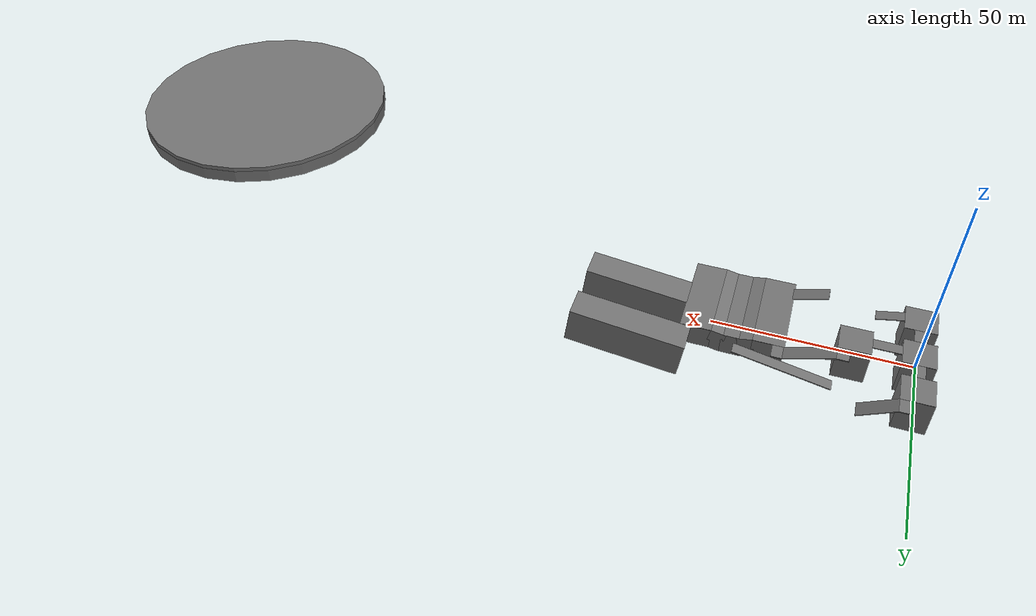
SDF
<sdf version="1.10">
 <world name="waterworld">
  <physics name="ode_cpu" type="ode">
   <max_step_size>0.002</max_step_size>
   <real_time_update_rate>500</real_time_update_rate>
   <real_time_factor>1.0</real_time_factor>
   <ode>
    <solver><type>quick</type><iters>50</iters><sor>1.3</sor></solver>
    <constraints><cfm>0.0</cfm><erp>0.2</erp></constraints>
   </ode>
  </physics>
  <plugin name="gz::sim::systems::Physics" filename="gz-sim-physics-system"/>
  <plugin name="gz::sim::systems::UserCommands" filename="gz-sim-user-commands-system"/>
  <plugin name="gz::sim::systems::SceneBroadcaster" filename="gz-sim-scene-broadcaster-system"/>
  <plugin name="gz::sim::systems::Contact" filename="gz-sim-contact-system"/>
  <gravity>0 0 -9.81</gravity>
  <magnetic_field>5.5644999999999998e-06 2.2875799999999999e-05 -4.2388400000000002e-05</magnetic_field>
  <atmosphere type="adiabatic"/>
  <scene><ambient>0.5 0.5 0.5 1</ambient><background>0.7 0.7 0.75 1</background><shadows>false</shadows></scene>
  <model name="central_tower">
   <static>true</static>
   <link name="link">
    <collision name="col"><geometry><box><size>8 8 10</size></box></geometry></collision>
    <visual name="vis">
     <geometry><box><size>8 8 10</size></box></geometry>
     <material>
      <ambient>0.35 0.35 0.35 1</ambient>
      <diffuse>0.45 0.45 0.45 1</diffuse>
      <pbr>
       <metal>
        <albedo_map>model://textures/stone_textures/stone_wall_seamless_1.jpg</albedo_map>
        <roughness>0.9</roughness>
        <metalness>0.0</metalness>
       </metal>
      </pbr>
     </material>
    </visual>
   </link>
  </model>
  <model name="central_arena_floor_model">
   <static>true</static>
   <pose>0 0 5 0 0 0</pose>
   <link name="central_arena_floor_link">
    <collision name="col">
     <geometry><box><size>8 8 0.1</size></box></geometry>
     <surface>
      <friction><ode><mu>0.9</mu><mu2>0.9</mu2><fdir1>1 0 0</fdir1></ode></friction>
      <bounce><restitution_coefficient>0.03</restitution_coefficient><threshold>1e3</threshold></bounce>
      <contact><ode><kp>1e6</kp><kd>1e3</kd><max_vel>1.0</max_vel><min_depth>0.001</min_depth></ode></contact>
     </surface>
    </collision>
    <visual name="vis">
     <geometry><box><size>8 8 0.1</size></box></geometry>
     <material>
      <ambient>0.35 0.35 0.35 1</ambient>
      <diffuse>0.45 0.45 0.45 1</diffuse>
      <pbr>
       <metal>
        <albedo_map>model://textures/grass_textures/green_grass_seamless.jpg</albedo_map>
        <roughness>0.9</roughness>
        <metalness>0.0</metalness>
       </metal>
      </pbr>
     </material>
    </visual>
   </link>
  </model>
  <model name="west_tower">
   <static>true</static>
   <link name="link">
    <pose>0 12 0 0 0 0</pose>
    <collision name="col"><geometry><box><size>8 8 10</size></box></geometry></collision>
    <visual name="vis">
     <geometry><box><size>8 8 10</size></box></geometry>
     <material>
      <ambient>0.35 0.35 0.35 1</ambient>
      <diffuse>0.45 0.45 0.45 1</diffuse>
      <pbr>
       <metal>
        <albedo_map>model://textures/stone_textures/stone_wall_seamless_1.jpg</albedo_map>
        <roughness>0.9</roughness>
        <metalness>0.0</metalness>
       </metal>
      </pbr>
     </material>
    </visual>
   </link>
  </model>
  <model name="west_arena_floor_model">
   <static>true</static>
   <pose>0 12 5 0 0 0</pose>
   <link name="west_arena_floor_link">
    <collision name="col">
     <geometry><box><size>8 8 0.1</size></box></geometry>
     <surface>
      <friction><ode><mu>0.9</mu><mu2>0.9</mu2><fdir1>1 0 0</fdir1></ode></friction>
      <bounce><restitution_coefficient>0.03</restitution_coefficient><threshold>1e3</threshold></bounce>
      <contact><ode><kp>1e6</kp><kd>1e3</kd><max_vel>1.0</max_vel><min_depth>0.001</min_depth></ode></contact>
     </surface>
    </collision>
    <visual name="vis">
     <geometry><box><size>8 8 0.1</size></box></geometry>
     <material>
      <ambient>0.35 0.35 0.35 1</ambient>
      <diffuse>0.45 0.45 0.45 1</diffuse>
      <pbr>
       <metal>
        <albedo_map>model://textures/grass_textures/green_grass_seamless.jpg</albedo_map>
        <roughness>0.9</roughness>
        <metalness>0.0</metalness>
       </metal>
      </pbr>
     </material>
    </visual>
   </link>
  </model>
  <model name="east_tower">
   <static>true</static>
   <link name="link">
    <pose>0 -12 0 0 0 0</pose>
    <collision name="col"><geometry><box><size>8 8 10</size></box></geometry></collision>
    <visual name="vis">
     <geometry><box><size>8 8 10</size></box></geometry>
     <material>
      <ambient>0.35 0.35 0.35 1</ambient>
      <diffuse>0.45 0.45 0.45 1</diffuse>
      <pbr>
       <metal>
        <albedo_map>model://textures/stone_textures/stone_wall_seamless_1.jpg</albedo_map>
        <roughness>0.9</roughness>
        <metalness>0.0</metalness>
       </metal>
      </pbr>
     </material>
    </visual>
   </link>
  </model>
  <model name="east_arena_floor_model">
   <static>true</static>
   <pose>0 -12 5 0 0 0</pose>
   <link name="east_arena_floor_link">
    <collision name="col">
     <geometry><box><size>8 8 0.1</size></box></geometry>
     <surface>
      <friction><ode><mu>0.9</mu><mu2>0.9</mu2><fdir1>1 0 0</fdir1></ode></friction>
      <bounce><restitution_coefficient>0.03</restitution_coefficient><threshold>1e3</threshold></bounce>
      <contact><ode><kp>1e6</kp><kd>1e3</kd><max_vel>1.0</max_vel><min_depth>0.001</min_depth></ode></contact>
     </surface>
    </collision>
    <visual name="vis">
     <geometry><box><size>8 8 0.1</size></box></geometry>
     <material>
      <ambient>0.35 0.35 0.35 1</ambient>
      <diffuse>0.45 0.45 0.45 1</diffuse>
      <pbr>
       <metal>
        <albedo_map>model://textures/grass_textures/green_grass_seamless.jpg</albedo_map>
        <roughness>0.9</roughness>
        <metalness>0.0</metalness>
       </metal>
      </pbr>
     </material>
    </visual>
   </link>
  </model>
  <model name="north_tower">
   <static>true</static>
   <link name="link">
    <pose>15 0 0 0 0 0</pose>
    <collision name="col"><geometry><box><size>8 8 10</size></box></geometry></collision>
    <visual name="vis">
     <geometry><box><size>8 8 10</size></box></geometry>
     <material>
      <ambient>0.35 0.35 0.35 1</ambient>
      <diffuse>0.45 0.45 0.45 1</diffuse>
      <pbr>
       <metal>
        <albedo_map>model://textures/stone_textures/stone_wall_seamless_1.jpg</albedo_map>
        <roughness>0.9</roughness>
        <metalness>0.0</metalness>
       </metal>
      </pbr>
     </material>
    </visual>
   </link>
  </model>
  <model name="north_arena_floor_model">
   <static>true</static>
   <pose>15 0 5 0 0 0</pose>
   <link name="north_arena_floor_link">
    <collision name="col">
     <geometry><box><size>8 8 0.1</size></box></geometry>
     <surface>
      <friction><ode><mu>0.9</mu><mu2>0.9</mu2><fdir1>1 0 0</fdir1></ode></friction>
      <bounce><restitution_coefficient>0.03</restitution_coefficient><threshold>1e3</threshold></bounce>
      <contact><ode><kp>1e6</kp><kd>1e3</kd><max_vel>1.0</max_vel><min_depth>0.001</min_depth></ode></contact>
     </surface>
    </collision>
    <visual name="vis">
     <geometry><box><size>8 8 0.1</size></box></geometry>
     <material>
      <ambient>0.35 0.35 0.35 1</ambient>
      <diffuse>0.45 0.45 0.45 1</diffuse>
      <pbr>
       <metal>
        <albedo_map>model://textures/grass_textures/green_grass_seamless.jpg</albedo_map>
        <roughness>0.9</roughness>
        <metalness>0.0</metalness>
       </metal>
      </pbr>
     </material>
    </visual>
   </link>
  </model>
  <model name="tidal_island_segment_1">
   <static>true</static>
   <link name="link">
    <pose>35 -8 -2.2 0 0 0</pose>
    <collision name="col"><geometry><box><size>8 24 6</size></box></geometry></collision>
    <visual name="vis">
     <geometry><box><size>8 24 6</size></box></geometry>
     <material>
      <ambient>0.35 0.35 0.35 1</ambient>
      <diffuse>0.45 0.45 0.45 1</diffuse>
      <pbr>
       <metal>
        <albedo_map>model://textures/stone_textures/stone_wall_seamless_1.jpg</albedo_map>
        <roughness>0.9</roughness>
        <metalness>0.0</metalness>
       </metal>
      </pbr>
     </material>
    </visual>
   </link>
  </model>
  <model name="tidal_island_segment_1_floor_model">
   <static>true</static>
   <pose>35 -8 0.8 0 0 0</pose>
   <link name="north_arena_floor_link">
    <collision name="col">
     <geometry><box><size>8 24 0.1</size></box></geometry>
     <surface>
      <friction><ode><mu>0.9</mu><mu2>0.9</mu2><fdir1>1 0 0</fdir1></ode></friction>
      <bounce><restitution_coefficient>0.03</restitution_coefficient><threshold>1e3</threshold></bounce>
      <contact><ode><kp>1e6</kp><kd>1e3</kd><max_vel>1.0</max_vel><min_depth>0.001</min_depth></ode></contact>
     </surface>
    </collision>
    <visual name="vis">
     <geometry><box><size>8 24 0.1</size></box></geometry>
     <material>
      <ambient>0.35 0.35 0.35 1</ambient>
      <diffuse>0.45 0.45 0.45 1</diffuse>
      <pbr>
       <metal>
        <albedo_map>model://textures/grass_textures/green_grass_seamless.jpg</albedo_map>
        <roughness>0.9</roughness>
        <metalness>0.0</metalness>
       </metal>
      </pbr>
     </material>
    </visual>
   </link>
  </model>
  <model name="tidal_island_segment_2">
   <static>true</static>
   <link name="link">
    <pose>40.3641 -8 -2.4876 0 0.2 0</pose>
    <collision name="col"><geometry><box><size>4 24 6</size></box></geometry></collision>
    <visual name="vis">
     <geometry><box><size>4 24 6</size></box></geometry>
     <material>
      <ambient>0.35 0.35 0.35 1</ambient>
      <diffuse>0.45 0.45 0.45 1</diffuse>
      <pbr>
       <metal>
        <albedo_map>model://textures/stone_textures/stone_wall_seamless_1.jpg</albedo_map>
        <roughness>0.9</roughness>
        <metalness>0.0</metalness>
       </metal>
      </pbr>
     </material>
    </visual>
   </link>
  </model>
  <model name="tidal_island_segment_3">
   <static>true</static>
   <link name="link">
    <pose>44.2 -8 -2.8 0 0 0</pose>
    <collision name="col"><geometry><box><size>5 24 6</size></box></geometry></collision>
    <visual name="vis">
     <geometry><box><size>5 24 6</size></box></geometry>
     <material>
      <ambient>0.35 0.35 0.35 1</ambient>
      <diffuse>0.45 0.45 0.45 1</diffuse>
      <pbr>
       <metal>
        <albedo_map>model://textures/stone_textures/stone_wall_seamless_1.jpg</albedo_map>
        <roughness>0.9</roughness>
        <metalness>0.0</metalness>
       </metal>
      </pbr>
     </material>
    </visual>
   </link>
  </model>
  <model name="tidal_island_segment_4">
   <static>true</static>
   <link name="link">
    <pose>48 -8 -2.4876 0 -0.2 0</pose>
    <collision name="col"><geometry><box><size>4 24 6</size></box></geometry></collision>
    <visual name="vis">
     <geometry><box><size>4 24 6</size></box></geometry>
     <material>
      <ambient>0.35 0.35 0.35 1</ambient>
      <diffuse>0.45 0.45 0.45 1</diffuse>
      <pbr>
       <metal>
        <albedo_map>model://textures/stone_textures/stone_wall_seamless_1.jpg</albedo_map>
        <roughness>0.9</roughness>
        <metalness>0.0</metalness>
       </metal>
      </pbr>
     </material>
    </visual>
   </link>
  </model>
  <model name="tidal_island_segment_5">
   <static>true</static>
   <link name="link">
    <pose>53.3641 -8 -2.2 0 0 0</pose>
    <collision name="col"><geometry><box><size>8 24 6</size></box></geometry></collision>
    <visual name="vis">
     <geometry><box><size>8 24 6</size></box></geometry>
     <material>
      <ambient>0.35 0.35 0.35 1</ambient>
      <diffuse>0.45 0.45 0.45 1</diffuse>
      <pbr>
       <metal>
        <albedo_map>model://textures/stone_textures/stone_wall_seamless_1.jpg</albedo_map>
        <roughness>0.9</roughness>
        <metalness>0.0</metalness>
       </metal>
      </pbr>
     </material>
    </visual>
   </link>
  </model>
  <model name="tidal_island_segment_5_floor_model">
   <static>true</static>
   <pose>53.3641 -8 0.7999 0 0 0</pose>
   <link name="north_arena_floor_link">
    <collision name="col">
     <geometry><box><size>8 24 0.1</size></box></geometry>
     <surface>
      <friction><ode><mu>0.9</mu><mu2>0.9</mu2><fdir1>1 0 0</fdir1></ode></friction>
      <bounce><restitution_coefficient>0.03</restitution_coefficient><threshold>1e3</threshold></bounce>
      <contact><ode><kp>1e6</kp><kd>1e3</kd><max_vel>1.0</max_vel><min_depth>0.001</min_depth></ode></contact>
     </surface>
    </collision>
    <visual name="vis">
     <geometry><box><size>8 24 0.1</size></box></geometry>
     <material>
      <ambient>0.35 0.35 0.35 1</ambient>
      <diffuse>0.45 0.45 0.45 1</diffuse>
      <pbr>
       <metal>
        <albedo_map>model://textures/grass_textures/green_grass_seamless.jpg</albedo_map>
        <roughness>0.9</roughness>
        <metalness>0.0</metalness>
       </metal>
      </pbr>
     </material>
    </visual>
   </link>
  </model>
  <model name="sky_oasis">
   <static>true</static>
   <link name="link">
    <pose>170 0 40 0 0 0</pose>
    <collision name="col">
     <geometry><cylinder><radius>30</radius><length>3</length></cylinder></geometry>
    </collision>
    <visual name="vis">
     <geometry><cylinder><radius>30</radius><length>3</length></cylinder></geometry>
     <material>
      <ambient>0.35 0.35 0.35 1</ambient>
      <diffuse>0.45 0.45 0.45 1</diffuse>
      <pbr>
       <metal>
        <albedo_map>model://textures/soil_textures/soil_seamless_1.jpg</albedo_map>
        <roughness>0.9</roughness>
        <metalness>0.0</metalness>
       </metal>
      </pbr>
     </material>
    </visual>
   </link>
  </model>
  <model name="sky_oasis_floor_model">
   <static>true</static>
   <pose>170 0 42 0 0 0</pose>
   <link name="central_arena_floor_link">
    <collision name="col">
     <geometry><cylinder><radius>30</radius><length>1</length></cylinder></geometry>
     <surface>
      <friction><ode><mu>0.9</mu><mu2>0.9</mu2><fdir1>1 0 0</fdir1></ode></friction>
      <bounce><restitution_coefficient>0.03</restitution_coefficient><threshold>1e3</threshold></bounce>
      <contact><ode><kp>1e6</kp><kd>1e3</kd><max_vel>1.0</max_vel><min_depth>0.001</min_depth></ode></contact>
     </surface>
    </collision>
    <visual name="vis">
     <geometry><cylinder><radius>30</radius><length>1</length></cylinder></geometry>
     <material>
      <ambient>0.35 0.35 0.35 1</ambient>
      <diffuse>0.45 0.45 0.45 1</diffuse>
      <pbr>
       <metal>
        <albedo_map>model://textures/grass_textures/green_grass_seamless.jpg</albedo_map>
        <roughness>0.9</roughness>
        <metalness>0.0</metalness>
       </metal>
      </pbr>
     </material>
    </visual>
   </link>
  </model>
  <model name="north_bridge">
   <static>true</static>
   <link name="link">
    <pose>7.5 0 4.925 0 0 0</pose>
    <collision name="col"><geometry><box><size>7 3 0.25</size></box></geometry></collision>
    <visual name="vis">
     <geometry><box><size>7 3 0.25</size></box></geometry>
     <material>
      <ambient>0.35 0.35 0.35 1</ambient>
      <diffuse>0.45 0.45 0.45 1</diffuse>
      <pbr>
       <metal>
        <albedo_map>model://textures/wood_textures/wood_texture_seamless_long.jpg</albedo_map>
        <roughness>0.9</roughness>
        <metalness>0.0</metalness>
       </metal>
      </pbr>
     </material>
    </visual>
   </link>
  </model>
  <model name="east_bridge">
   <static>true</static>
   <link name="link">
    <pose>0 -6 4.925 0 0 0</pose>
    <collision name="col"><geometry><box><size>3 4 0.25</size></box></geometry></collision>
    <visual name="vis">
     <geometry><box><size>3 4 0.25</size></box></geometry>
     <material>
      <ambient>0.35 0.35 0.35 1</ambient>
      <diffuse>0.45 0.45 0.45 1</diffuse>
      <pbr>
       <metal>
        <albedo_map>model://textures/wood_textures/wood_texture_seamless_1.jpg</albedo_map>
        <roughness>0.9</roughness>
        <metalness>0.0</metalness>
       </metal>
      </pbr>
     </material>
    </visual>
   </link>
  </model>
  <model name="west_bridge">
   <static>true</static>
   <link name="link">
    <pose>0 6 4.925 0 0 0</pose>
    <collision name="col"><geometry><box><size>3 4 0.25</size></box></geometry></collision>
    <visual name="vis">
     <geometry><box><size>3 4 0.25</size></box></geometry>
     <material>
      <ambient>0.35 0.35 0.35 1</ambient>
      <diffuse>0.45 0.45 0.45 1</diffuse>
      <pbr>
       <metal>
        <albedo_map>model://textures/wood_textures/wood_texture_seamless_1.jpg</albedo_map>
        <roughness>0.9</roughness>
        <metalness>0.0</metalness>
       </metal>
      </pbr>
     </material>
    </visual>
   </link>
  </model>
  <model name="east_north_bridge">
   <static>true</static>
   <link name="link">
    <pose>7.39 -12 4.165 0 0.22 0</pose>
    <collision name="col"><geometry><box><size>7 3 0.25</size></box></geometry></collision>
    <visual name="vis">
     <geometry><box><size>7 3 0.25</size></box></geometry>
     <material>
      <ambient>0.35 0.35 0.35 1</ambient>
      <diffuse>0.45 0.45 0.45 1</diffuse>
      <pbr>
       <metal>
        <albedo_map>model://textures/wood_textures/wood_texture_seamless_long.jpg</albedo_map>
        <roughness>0.9</roughness>
        <metalness>0.0</metalness>
       </metal>
      </pbr>
     </material>
    </visual>
   </link>
  </model>
  <model name="west_north_bridge_platform">
   <static>true</static>
   <link name="link">
    <pose>2.5 18 4.925 0 0 0</pose>
    <collision name="col"><geometry><box><size>3 4 0.25</size></box></geometry></collision>
    <visual name="vis">
     <geometry><box><size>3 4 0.25</size></box></geometry>
     <material>
      <ambient>0.35 0.35 0.35 1</ambient>
      <diffuse>0.45 0.45 0.45 1</diffuse>
      <pbr>
       <metal>
        <albedo_map>model://textures/wood_textures/wood_texture_seamless_1.jpg</albedo_map>
        <roughness>0.9</roughness>
        <metalness>0.0</metalness>
       </metal>
      </pbr>
     </material>
    </visual>
   </link>
  </model>
  <model name="west_north_bridge">
   <static>true</static>
   <link name="link">
    <pose>8.328 18 2.543 0 0.5 0</pose>
    <collision name="col"><geometry><box><size>10 4 0.25</size></box></geometry></collision>
    <visual name="vis">
     <geometry><box><size>10 4 0.25</size></box></geometry>
     <material>
      <ambient>0.35 0.35 0.35 1</ambient>
      <diffuse>0.45 0.45 0.45 1</diffuse>
      <pbr>
       <metal>
        <albedo_map>model://textures/wood_textures/wood_texture_seamless_longer.jpg</albedo_map>
        <roughness>0.9</roughness>
        <metalness>0.0</metalness>
       </metal>
      </pbr>
     </material>
    </visual>
   </link>
  </model>
  <model name="west_north_north_bridge">
   <static>true</static>
   <link name="link">
    <pose>31 12.2 2.5 0 -0.2 0</pose>
    <collision name="col"><geometry><box><size>25 3 0.25</size></box></geometry></collision>
    <visual name="vis">
     <geometry><box><size>25 3 0.25</size></box></geometry>
     <material>
      <ambient>0.35 0.35 0.35 1</ambient>
      <diffuse>0.45 0.45 0.45 1</diffuse>
      <pbr>
       <metal>
        <albedo_map>model://textures/wood_textures/wood_texture_seamless_1x10.jpg</albedo_map>
        <roughness>0.9</roughness>
        <metalness>0.0</metalness>
       </metal>
      </pbr>
     </material>
    </visual>
   </link>
  </model>
  <model name="north_north_bridge_platform_1">
   <static>true</static>
   <link name="link">
    <pose>17.5 6 4.925 0 0 0</pose>
    <collision name="col"><geometry><box><size>3 4 0.25</size></box></geometry></collision>
    <visual name="vis">
     <geometry><box><size>3 4 0.25</size></box></geometry>
     <material>
      <ambient>0.35 0.35 0.35 1</ambient>
      <diffuse>0.45 0.45 0.45 1</diffuse>
      <pbr>
       <metal>
        <albedo_map>model://textures/wood_textures/wood_texture_seamless_longer.jpg</albedo_map>
        <roughness>0.9</roughness>
        <metalness>0.0</metalness>
       </metal>
      </pbr>
     </material>
    </visual>
   </link>
  </model>
  <model name="north_north_bridge">
   <static>true</static>
   <link name="link">
    <pose>25.1 6 2.82 0 0.33 0</pose>
    <collision name="col"><geometry><box><size>13 4 0.25</size></box></geometry></collision>
    <visual name="vis">
     <geometry><box><size>13 4 0.25</size></box></geometry>
     <material>
      <ambient>0.35 0.35 0.35 1</ambient>
      <diffuse>0.45 0.45 0.45 1</diffuse>
      <pbr>
       <metal>
        <albedo_map>model://textures/wood_textures/wood_texture_seamless_longer.jpg</albedo_map>
        <roughness>0.9</roughness>
        <metalness>0.0</metalness>
       </metal>
      </pbr>
     </material>
    </visual>
   </link>
  </model>
  <model name="north_north_bridge_platform_2">
   <static>true</static>
   <link name="link">
    <pose>32.5 6 0.725 0 0 0</pose>
    <collision name="col"><geometry><box><size>3 4 0.25</size></box></geometry></collision>
    <visual name="vis">
     <geometry><box><size>3 4 0.25</size></box></geometry>
     <material>
      <ambient>0.35 0.35 0.35 1</ambient>
      <diffuse>0.45 0.45 0.45 1</diffuse>
      <pbr>
       <metal>
        <albedo_map>model://textures/wood_textures/wood_texture_seamless_1.jpg</albedo_map>
        <roughness>0.9</roughness>
        <metalness>0.0</metalness>
       </metal>
      </pbr>
     </material>
    </visual>
   </link>
  </model>
  <model name="east_north_north_bridge">
   <static>true</static>
   <link name="link">
    <pose>27.26 -16 1.986 0 0.3 0</pose>
    <collision name="col"><geometry><box><size>10 4 0.25</size></box></geometry></collision>
    <visual name="vis">
     <geometry><box><size>10 4 0.25</size></box></geometry>
     <material>
      <ambient>0.35 0.35 0.35 1</ambient>
      <diffuse>0.45 0.45 0.45 1</diffuse>
      <pbr>
       <metal>
        <albedo_map>model://textures/wood_textures/wood_texture_seamless_1x5.jpg</albedo_map>
        <roughness>0.9</roughness>
        <metalness>0.0</metalness>
       </metal>
      </pbr>
     </material>
    </visual>
   </link>
  </model>
  <model name="stone_bridge_1">
   <static>true</static>
   <link name="link">
    <pose>70 -8 -2.65 0 -0.12 0</pose>
    <collision name="col"><geometry><box><size>30 8 10</size></box></geometry></collision>
    <visual name="vis">
     <geometry><box><size>30 8 10</size></box></geometry>
     <material>
      <ambient>0.35 0.35 0.35 1</ambient>
      <diffuse>0.45 0.45 0.45 1</diffuse>
      <pbr>
       <metal>
        <albedo_map>model://textures/stone_textures/stone_wall_seamless_1.jpg</albedo_map>
        <roughness>0.9</roughness>
        <metalness>0.0</metalness>
       </metal>
      </pbr>
     </material>
    </visual>
   </link>
  </model>
  <model name="stone_bridge_2">
   <static>true</static>
   <link name="link">
    <pose>70 8 -2.65 0 -0.12 0</pose>
    <collision name="col"><geometry><box><size>30 8 10</size></box></geometry></collision>
    <visual name="vis">
     <geometry><box><size>30 8 10</size></box></geometry>
     <material>
      <ambient>0.35 0.35 0.35 1</ambient>
      <diffuse>0.45 0.45 0.45 1</diffuse>
      <pbr>
       <metal>
        <albedo_map>model://textures/stone_textures/stone_wall_seamless_1.jpg</albedo_map>
        <roughness>0.9</roughness>
        <metalness>0.0</metalness>
       </metal>
      </pbr>
     </material>
    </visual>
   </link>
  </model>
  <light name="sun" type="directional">
   <pose>0 0 10 0 0 0</pose>
   <intensity>1</intensity>
   <direction>-0.5 0.10000000000000001 -0.90000000000000002</direction>
   <diffuse>0.800000012 0.800000012 0.800000012 1</diffuse>
   <specular>0.200000003 0.200000003 0.200000003 1</specular>
   <attenuation>
    <range>1000</range>
    <linear>0.01</linear>
    <constant>0.90000000000000002</constant>
    <quadratic>0.001</quadratic>
   </attenuation>
   <spot><inner_angle>0</inner_angle><outer_angle>0</outer_angle><falloff>0</falloff></spot>
  </light>
 </world>
</sdf>
